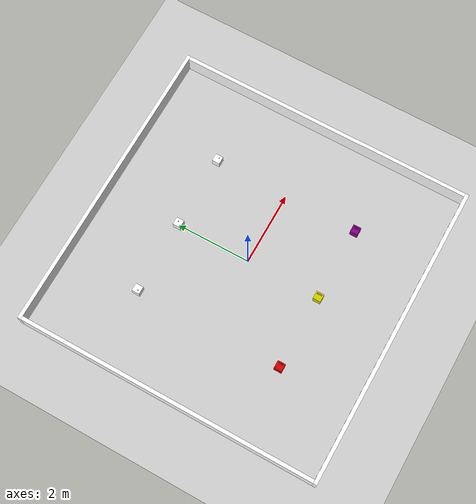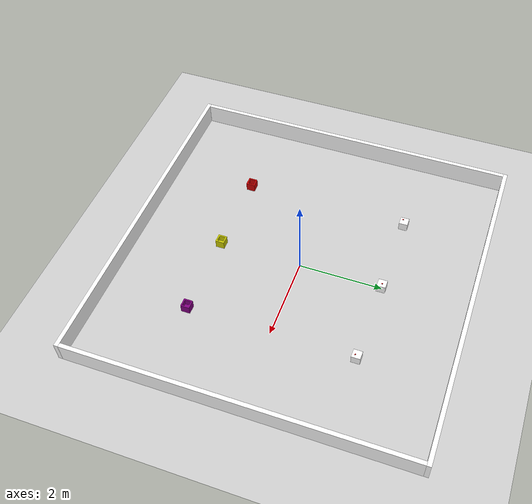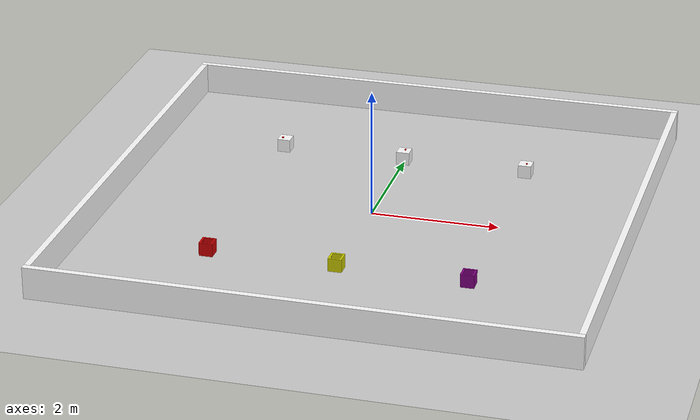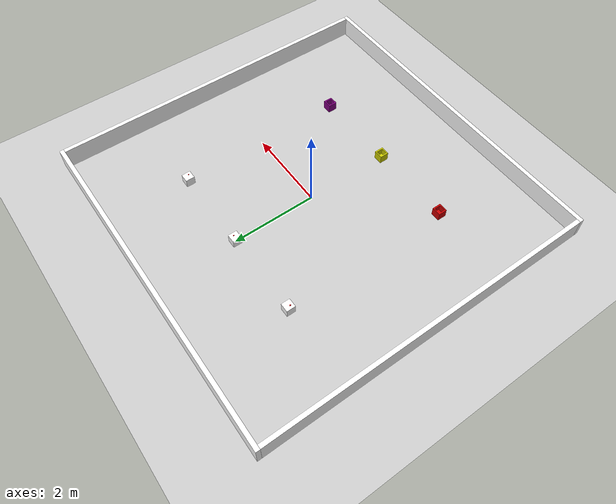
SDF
<?xml version="1.0" ?>
<sdf version="1.9">
  <world name="simple_room">

    <plugin filename="gz-sim-physics-system" name="gz::sim::systems::Physics"/>
    <plugin filename="gz-sim-user-commands-system" name="gz::sim::systems::UserCommands"/>
    <plugin filename="gz-sim-scene-broadcaster-system" name="gz::sim::systems::SceneBroadcaster"/>
    <plugin filename="gz-sim-imu-system" name="gz::sim::systems::Imu"/>

    <plugin filename="gz-sim-sensors-system" name="gz::sim::systems::Sensors">
      <render_engine>ogre2</render_engine>
    </plugin>

    <physics type="ode">
      <max_step_size>0.005</max_step_size>
      <real_time_update_rate>200</real_time_update_rate>
    </physics>

    <light type="directional" name="sun">
      <cast_shadows>false</cast_shadows>
      <pose>0 0 10 0 0 0</pose>
      <diffuse>0.8 0.8 0.8 1</diffuse>
      <specular>0.2 0.2 0.2 1</specular>
      <direction>-0.5 0.1 -0.9</direction>
    </light>

    <model name="ground_plane">
      <static>true</static>
      <link name="link">
        <collision name="collision">
          <geometry><plane><normal>0 0 1</normal><size>20 20</size></plane></geometry>
        </collision>
        <visual name="visual">
          <geometry><plane><normal>0 0 1</normal><size>20 20</size></plane></geometry>
          <material>
            <ambient>0.8 0.8 0.8 1</ambient>
            <diffuse>0.8 0.8 0.8 1</diffuse>
          </material>
        </visual>
      </link>
    </model>

    <model name="wall_north">
      <static>true</static>
      <pose>0 4.05 0.25 0 0 0</pose>
      <link name="link">
        <collision name="collision"><geometry><box><size>8.2 0.1 0.5</size></box></geometry></collision>
        <visual name="visual">
          <geometry><box><size>8.2 0.1 0.5</size></box></geometry>
          <material><ambient>1 1 1 1</ambient><diffuse>1 1 1 1</diffuse></material>
        </visual>
      </link>
    </model>

    <model name="wall_south">
      <static>true</static>
      <pose>0 -4.05 0.25 0 0 0</pose>
      <link name="link">
        <collision name="collision"><geometry><box><size>8.2 0.1 0.5</size></box></geometry></collision>
        <visual name="visual">
          <geometry><box><size>8.2 0.1 0.5</size></box></geometry>
          <material><ambient>1 1 1 1</ambient><diffuse>1 1 1 1</diffuse></material>
        </visual>
      </link>
    </model>

    <model name="wall_east">
      <static>true</static>
      <pose>4.05 0 0.25 0 0 0</pose>
      <link name="link">
        <collision name="collision"><geometry><box><size>0.1 8.0 0.5</size></box></geometry></collision>
        <visual name="visual">
          <geometry><box><size>0.1 8.0 0.5</size></box></geometry>
          <material><ambient>1 1 1 1</ambient><diffuse>1 1 1 1</diffuse></material>
        </visual>
      </link>
    </model>

    <model name="wall_west">
      <static>true</static>
      <pose>-4.05 0 0.25 0 0 0</pose>
      <link name="link">
        <collision name="collision"><geometry><box><size>0.1 8.0 0.5</size></box></geometry></collision>
        <visual name="visual">
          <geometry><box><size>0.1 8.0 0.5</size></box></geometry>
          <material><ambient>1 1 1 1</ambient><diffuse>1 1 1 1</diffuse></material>
        </visual>
      </link>
    </model>

    <model name="obstacle_1">
      <static>true</static>
      <pose>-2.105 -1.895 0 1.5708 0 0</pose>
      <link name="link">
        <collision name="collision">
          <geometry>
            <mesh>
              <uri>model://obstacle_box/meshes/box.stl</uri>
              <scale>0.001 0.001 0.001</scale>
            </mesh>
          </geometry>
        </collision>
        <visual name="visual">
          <geometry>
            <mesh>
              <uri>model://obstacle_box/meshes/box.stl</uri>
              <scale>0.001 0.001 0.001</scale>
            </mesh>
          </geometry>
          <material>
            <ambient>0.8 0 0 0.9</ambient>
            <diffuse>0.8 0 0 0.9</diffuse>
            <specular>0.6 0.6 0.6 1</specular>
          </material>
        </visual>
      </link>
    </model>

    <model name="obstacle_2">
      <static>true</static>
      <pose>-0.105 -1.895 0 1.5708 0 0</pose>
      <link name="link">
        <collision name="collision">
          <geometry>
            <mesh>
              <uri>model://obstacle_box/meshes/box.stl</uri>
              <scale>0.001 0.001 0.001</scale>
            </mesh>
          </geometry>
        </collision>
        <visual name="visual">
          <geometry>
            <mesh>
              <uri>model://obstacle_box/meshes/box.stl</uri>
              <scale>0.001 0.001 0.001</scale>
            </mesh>
          </geometry>
          <material>
            <ambient>0.8 0.8 0 0.9</ambient>
            <diffuse>0.8 0.8 0 0.9</diffuse>
            <specular>0.6 0.6 0.6 1</specular>
          </material>
        </visual>
      </link>
    </model>

    <model name="obstacle_3">
      <static>true</static>
      <pose>1.895 -1.895 0 1.5708 0 0</pose>
      <link name="link">
        <collision name="collision">
          <geometry>
            <mesh>
              <uri>model://obstacle_box/meshes/box.stl</uri>
              <scale>0.001 0.001 0.001</scale>
            </mesh>
          </geometry>
        </collision>
        <visual name="visual">
          <geometry>
            <mesh>
              <uri>model://obstacle_box/meshes/box.stl</uri>
              <scale>0.001 0.001 0.001</scale>
            </mesh>
          </geometry>
          <material>
            <ambient>0.5 0 0.5 0.9</ambient>
            <diffuse>0.5 0 0.5 0.9</diffuse>
            <specular>0.6 0.6 0.6 1</specular>
          </material>
        </visual>
      </link>
    </model>

    <model name="white_box_1">
      <static>true</static>
      <pose>2.0 2.0 0.105 0 0 0</pose>
      <link name="link">
        <collision name="collision"><geometry><box><size>0.21 0.21 0.21</size></box></geometry></collision>
        <visual name="visual">
          <geometry><box><size>0.21 0.21 0.21</size></box></geometry>
          <material><ambient>1 1 1 1</ambient><diffuse>1 1 1 1</diffuse></material>
        </visual>
      </link>
    </model>

    <model name="red_object">
      <static>false</static>
      <pose>-2.03 1.97 0.22 0 0 0.8</pose>
      <link name="link">
        <inertial>
          <mass>0.01</mass> <inertia>
            <ixx>6.67e-07</ixx>
            <ixy>0</ixy>
            <ixz>0</ixz>
            <iyy>6.67e-07</iyy>
            <iyz>0</iyz>
            <izz>6.67e-07</izz>
          </inertia>
        </inertial>
        <collision name="collision">
          <geometry><box>
            <size>0.02 0.02 0.02</size></box>
          </geometry>
          <surface>
            <friction>
              <ode>
                <mu>5.0</mu>
                <mu2>5.0</mu2>
              </ode>
            </friction>
            <contact>
              <ode>
                <kp>1000000.0</kp>
                <kd>1.0</kd>
              </ode>
            </contact>
          </surface>
        </collision>
        <visual name="visual">
          <geometry><box><size>0.02 0.02 0.02</size></box></geometry>
          <material>
            <ambient>1 0 0 1</ambient>
            <diffuse>1 0 0 1</diffuse>
            <specular>0 0 0 0</specular>
          </material>
        </visual>
      </link>
    </model>

    <model name="white_box_2">
      <static>true</static>
      <pose>0.0 2.0 0.105 0 0 0</pose>
      <link name="link">
        <collision name="collision"><geometry><box><size>0.21 0.21 0.21</size></box></geometry></collision>
        <visual name="visual">
          <geometry><box><size>0.21 0.21 0.21</size></box></geometry>
          <material><ambient>1 1 1 1</ambient><diffuse>1 1 1 1</diffuse></material>
        </visual>
      </link>
    </model>

    <model name="yellow_object">
      <static>false</static>
      <pose>0.02 2.01 0.22 0 0 0.6</pose>
      <link name="link">
        <inertial>
          <mass>0.01</mass> <inertia>
            <ixx>6.67e-07</ixx>
            <ixy>0</ixy>
            <ixz>0</ixz>
            <iyy>6.67e-07</iyy>
            <iyz>0</iyz>
            <izz>6.67e-07</izz>
          </inertia>
        </inertial>
        <collision name="collision">
          <geometry><box>
            <size>0.02 0.02 0.02</size></box>
          </geometry>
          <surface>
            <friction>
              <ode>
                <mu>5.0</mu>
                <mu2>5.0</mu2>
              </ode>
            </friction>
            <contact>
              <ode>
                <kp>1000000.0</kp>
                <kd>1.0</kd>
              </ode>
            </contact>
          </surface>
        </collision>
        <visual name="visual">
          <geometry><box><size>0.02 0.02 0.02</size></box></geometry>
          <material>
            <ambient>1 0 0 1</ambient>
            <diffuse>1 0 0 1</diffuse>
            <specular>0 0 0 0</specular>
          </material>
        </visual>
      </link>
    </model>

    <model name="white_box_3">
      <static>true</static>
      <pose>-2.0 2.0 0.105 0 0 0</pose>
      <link name="link">
        <collision name="collision"><geometry><box><size>0.21 0.21 0.21</size></box></geometry></collision>
        <visual name="visual">
          <geometry><box><size>0.21 0.21 0.21</size></box></geometry>
          <material><ambient>1 1 1 1</ambient><diffuse>1 1 1 1</diffuse></material>
        </visual>
      </link>
    </model>

    <model name="purple_object">
      <static>false</static>
      <pose>2.025 1.97 0.22 0 0 0.9</pose>
      <link name="link">
        <inertial>
          <mass>0.01</mass> <inertia>
            <ixx>6.67e-07</ixx>
            <ixy>0</ixy>
            <ixz>0</ixz>
            <iyy>6.67e-07</iyy>
            <iyz>0</iyz>
            <izz>6.67e-07</izz>
          </inertia>
        </inertial>
        <collision name="collision">
          <geometry><box>
            <size>0.02 0.02 0.02</size></box>
          </geometry>
          <surface>
            <friction>
              <ode>
                <mu>5.0</mu>
                <mu2>5.0</mu2>
              </ode>
            </friction>
            <contact>
              <ode>
                <kp>1000000.0</kp>
                <kd>1.0</kd>
              </ode>
            </contact>
          </surface>
        </collision>
        <visual name="visual">
          <geometry><box><size>0.02 0.02 0.02</size></box></geometry>
          <material>
            <ambient>1 0 0 1</ambient>
            <diffuse>1 0 0 1</diffuse>
            <specular>0 0 0 0</specular>
          </material>
        </visual>
      </link>
    </model>

  </world>
</sdf>
